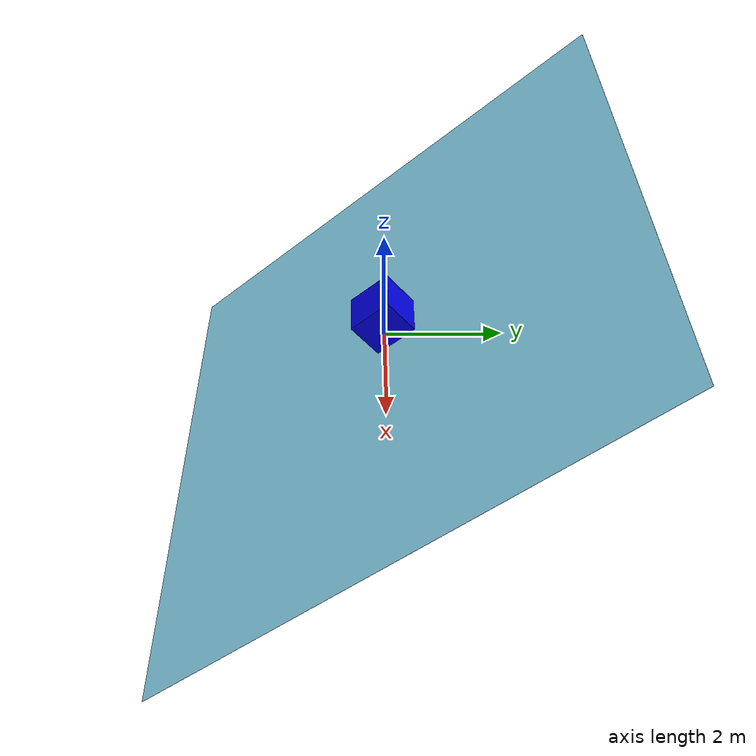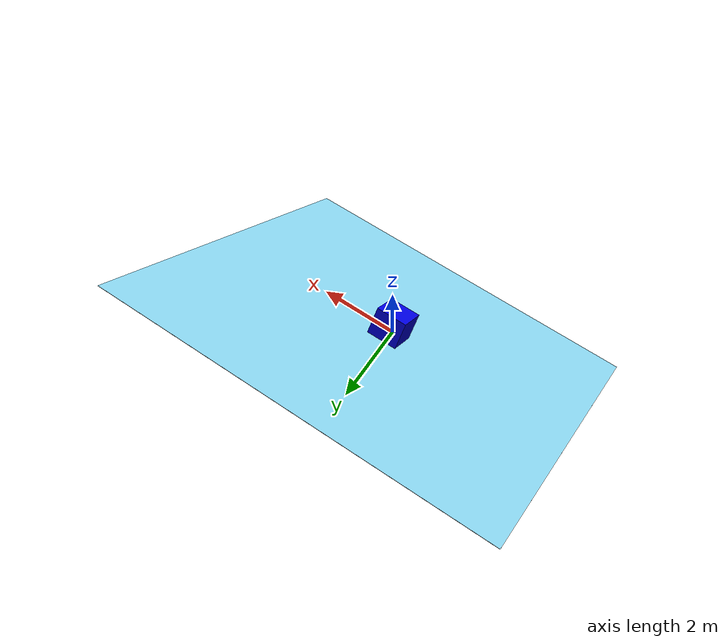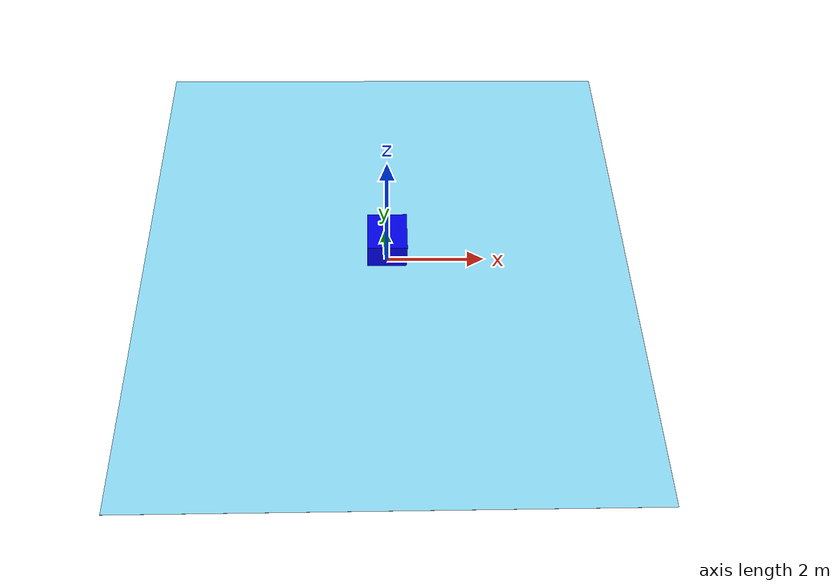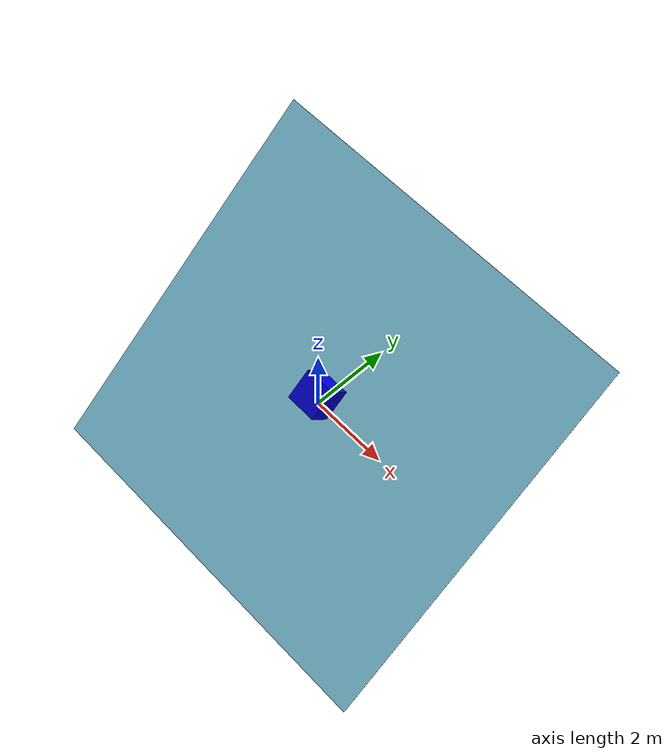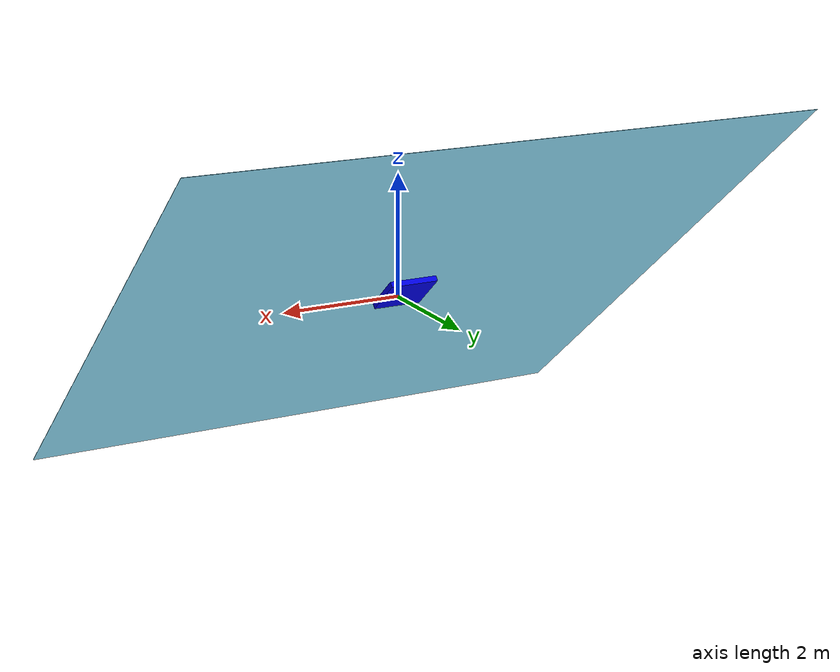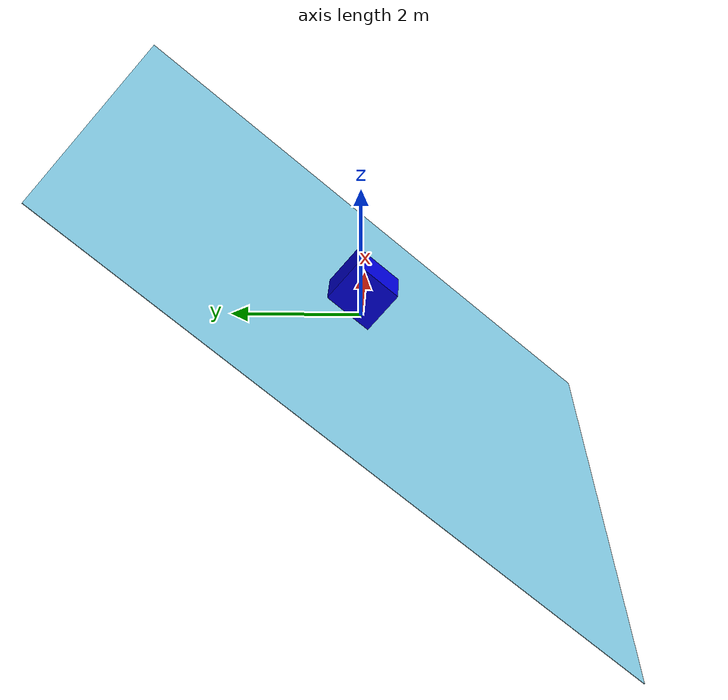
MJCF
<mujoco>

  <compiler angle="radian" coordinate="local" inertiafromgeom="true"/>

  <default>
    <joint armature="0" damping="2.0" limited="false"/>
    <geom friction="0.2 0 0" solimp="0.99 0.99 0.9" solref="0.01 0.9" />
  </default>

  <option gravity="0 0 -9.8" timestep="0.009"/>

  <asset>
    <!-- Define the textures -->
    <texture name="texplane" type="2d" builtin="checker" rgb1=".5 .8 .9" rgb2=".6 .9 1" width="512" height="512"/>
    <material name="MatPlane" texture="texplane" texrepeat="10 10" texuniform="true"/>

    <texture name="cube_texture" type="cube" builtin="checker" rgb1="0 0 1" rgb2="0 0 0.8" width="300" height="300"/>
    <material name="MatCube" texture="cube_texture" texrepeat="4 4"/>
  </asset>

  <worldbody>

    <!-- Light sources -->
    <light diffuse=".5 .5 .5" dir="0 0 -1" pos="0 0 3"/>

    <!-- Inclined ground setup with placeholder for angle -->
    <body name="inclined_plane" pos="0 0 0">
      <!-- Replace 0.7 dynamically from Python -->
      <geom condim="3" material="MatPlane" name="ground" pos="0 0 0" size="5 5 0.1" type="plane" euler="0.7 0 0" solref="0.001 1.0"/>
    </body>

    <!-- Cube setup positioned and oriented to match the plane incline -->
    <body name="cube" pos="0 0 0.4" euler="0.7 0 0">
      <joint name="cube_joint" type="free" damping="3.0"/>
      <geom name="cube_geom" size="0.4 0.4 0.4" type="box" material="MatCube" density="50" solref="0.001 1.0"/>
    </body>

  </worldbody>

</mujoco>
